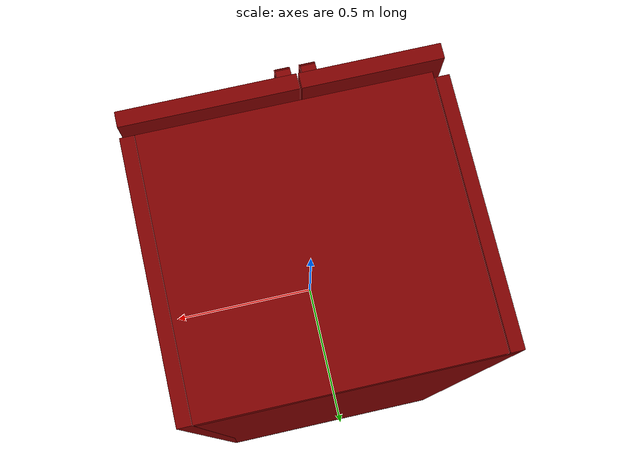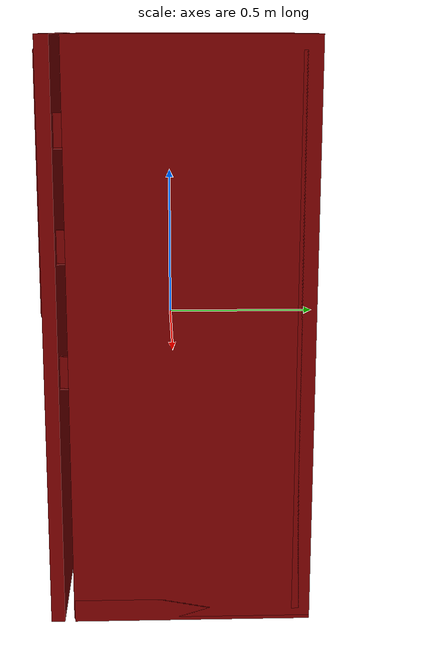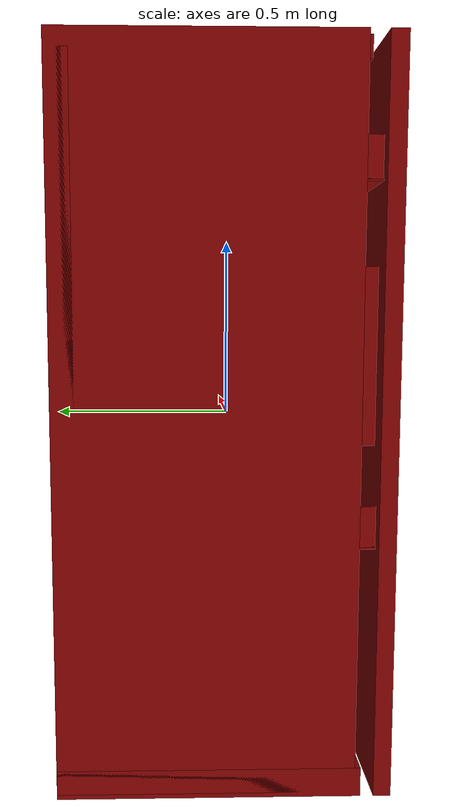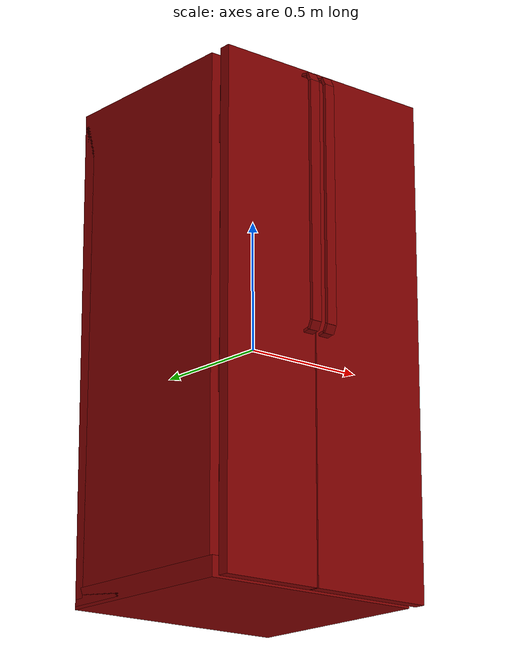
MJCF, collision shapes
<mujoco model="model">
  <compiler angle="radian"/>
  <asset>
    <mesh file="visuals/Body001.obj" name="Body001_vis"/>
    <mesh file="visuals/Body001_Clear.obj" name="Body001_Clear_vis"/>
    <mesh file="visuals/Door001.obj" name="Door001_vis"/>
    <mesh file="visuals/Door001_Clear.obj" name="Door001_Clear_vis"/>
    <mesh file="visuals/Door002.obj" name="Door002_vis"/>
    <mesh file="visuals/Door002_Clear.obj" name="Door002_Clear_vis"/>
    <mesh file="visuals/Drawer001.obj" name="Drawer001_vis"/>
    <mesh file="visuals/Drawer002.obj" name="Drawer002_vis"/>
    <mesh file="visuals/Drawer003.obj" name="Drawer003_vis"/>
    <mesh file="visuals/Handle001.obj" name="Handle001_vis"/>
    <mesh file="visuals/Handle002.obj" name="Handle002_vis"/>
    <texture file="visuals/T_BC001.png" name="Body001_material" type="2d"/>
    <material name="Body001_material" rgba="1 1 1 1.0" texture="Body001_material" shininess="0.5472135841846466" specular="0.3103448502657381"/>
    <material name="Body001_Clear_material" rgba="0.8875665664672852 0.8875665664672852 0.8875665664672852 0.14603173732757568" shininess="0.4472135901451111" specular="0.3103448502657381"/>
    <texture file="visuals/T_BC001.png" name="Door001_material" type="2d"/>
    <material name="Door001_material" rgba="1 1 1 1.0" texture="Door001_material" shininess="0.5472135841846466" specular="0.3103448502657381"/>
    <material name="Door001_Clear_material" rgba="0.8875665664672852 0.8875665664672852 0.8875665664672852 0.14603173732757568" shininess="0.4472135901451111" specular="0.3103448502657381"/>
    <texture file="visuals/T_BC001.png" name="Handle001_material" type="2d"/>
    <material name="Handle001_material" rgba="1 1 1 1.0" texture="Handle001_material" shininess="0.5472135841846466" specular="0.3103448502657381"/>
    <texture file="visuals/T_BC001.png" name="Door002_material" type="2d"/>
    <material name="Door002_material" rgba="1 1 1 1.0" texture="Door002_material" shininess="0.5472135841846466" specular="0.3103448502657381"/>
    <material name="Door002_Clear_material" rgba="0.8875665664672852 0.8875665664672852 0.8875665664672852 0.14603173732757568" shininess="0.4472135901451111" specular="0.3103448502657381"/>
    <texture file="visuals/T_BC001.png" name="Handle002_material" type="2d"/>
    <material name="Handle002_material" rgba="1 1 1 1.0" texture="Handle002_material" shininess="0.5472135841846466" specular="0.3103448502657381"/>
    <texture file="visuals/T_BC001.png" name="Drawer001_material" type="2d"/>
    <material name="Drawer001_material" rgba="1 1 1 1.0" texture="Drawer001_material" shininess="0.5472135841846466" specular="0.3103448502657381"/>
    <texture file="visuals/T_BC001.png" name="Drawer002_material" type="2d"/>
    <material name="Drawer002_material" rgba="1 1 1 1.0" texture="Drawer002_material" shininess="0.5472135841846466" specular="0.3103448502657381"/>
    <texture file="visuals/T_BC001.png" name="Drawer003_material" type="2d"/>
    <material name="Drawer003_material" rgba="1 1 1 1.0" texture="Drawer003_material" shininess="0.5472135841846466" specular="0.3103448502657381"/>
  </asset>
  <default>
    <default class="visual">
      <geom conaffinity="0" contype="0" group="1" type="mesh"/>
    </default>
    <default class="collision">
      <geom group="0" rgba="0.5 0 0 0.5"/>
    </default>
    <default class="spawn">
      <geom group="0" rgba="1 1 1 0.5" contype="0" conaffinity="0"/>
      <site group="0" rgba="1 1 1 0.5"/>
    </default>
    <default class="region">
      <geom group="1" conaffinity="0" contype="0" rgba="0 1 0 0"/>
    </default>
  </default>
  <worldbody>
    <body>
      <body name="object">
        <geom mesh="Body001_vis" type="mesh" solimp="0.998 0.998 0.001" solref="0.001 1" density="100" friction="0.95 0.3 0.1" class="visual" material="Body001_material"/>
        <geom class="collision" type="box" pos="-0.4336509108543396 0.07142437249422073 0.005860745906829834" size="0.01959938555955887 0.3851611018180847 0.951562225818634" quat="1.0 0.0 0.0 0.0"/>
        <geom class="collision" type="box" pos="0.0008711601258255541 0.06280471384525299 0.9293645024299622" size="0.4111725389957428 0.39378076791763306 0.028058471158146858" quat="1.0 0.0 0.0 0.0"/>
        <geom class="collision" type="box" pos="0.4333297610282898 0.06280471384525299 0.005860745906829834" size="0.01992054469883442 0.39378076791763306 0.951562225818634" quat="1.0 0.0 0.0 0.0"/>
        <geom class="collision" type="box" pos="0.0 0.06406276673078537 -0.9194051623344421" size="0.4532502591609955 0.3925227224826813 0.038017868995666504" quat="1.0 0.0 0.0 0.0"/>
        <geom class="collision" type="box" pos="0.0 0.4266170263290405 -0.004701931495219469" size="0.4532502591609955 0.029968474060297012 0.9156023263931274" quat="1.0 0.0 0.0 0.0"/>
        <geom class="collision" type="box" pos="-0.06068806350231171 0.04241957142949104 0.005115657113492489" size="0.023796552792191505 0.3735535442829132 0.903842031955719" quat="1.0 0.0 0.0 0.0"/>
        <body name="Body001_Clear">
          <geom mesh="Body001_Clear_vis" type="mesh" solimp="0.998 0.998 0.001" solref="0.001 1" density="100" friction="0.95 0.3 0.1" class="visual" material="Body001_Clear_material"/>
          <geom class="collision" type="box" pos="-0.0005941828712821007 0.06911363452672958 -0.21624889969825745" size="0.4159024655818939 0.3246045410633087 0.010394258424639702" quat="1.0 0.0 0.0 0.0"/>
          <geom class="collision" type="box" pos="-0.0005657924339175224 0.06904558837413788 -0.5462470054626465" size="0.41606733202934265 0.3245364725589752 0.010489673353731632" quat="1.0 0.0 0.0 0.0"/>
          <geom class="collision" type="box" pos="-0.00028277456294745207 0.10726486891508102 0.5461824536323547" size="0.4219730794429779 0.2994402348995209 0.00704615656286478" quat="1.0 0.0 0.0 0.0"/>
          <geom class="collision" type="box" pos="-0.00028277456294745207 0.10726486891508102 0.1892700493335724" size="0.4219730794429779 0.2994402348995209 0.007046188227832317" quat="1.0 0.0 0.0 0.0"/>
        </body>
        <body name="Door001">
          <joint axis="0.0 0.0 -1.0" pos="-0.4158991277217865 -0.3749711811542511 0.03443636745214462" limited="true" name="Door001_joint" range="0.0 1.5707963267948966" type="hinge" damping="1" frictionloss="1" armature=".01" stiffness="0.05"/>
          <geom mesh="Door001_vis" type="mesh" solimp="0.998 0.998 0.001" solref="0.001 1" density="100" friction="0.95 0.3 0.1" class="visual" material="Door001_material"/>
          <geom class="collision" type="box" pos="-0.2537972927093506 -0.3851555585861206 -2.8172507882118225e-08" size="0.1994502991437912 0.022545719519257545 0.9574116468429565" quat="1.0 0.0 0.0 0.0"/>
          <geom class="collision" type="box" pos="-0.2493261992931366 -0.3175674378871918 0.18050585687160492" size="0.13234353065490723 0.05310186371207237 0.22757089138031006" quat="1.0 0.0 0.0 0.0"/>
          <body name="Door001_Clear">
            <geom mesh="Door001_Clear_vis" type="mesh" solimp="0.998 0.998 0.001" solref="0.001 1" density="100" friction="0.95 0.3 0.1" class="visual" material="Door001_Clear_material"/>
            <geom class="collision" type="box" pos="-0.4107002913951874 -0.3392782509326935 0.6696896553039551" size="0.023360518738627434 0.005456980783492327 0.05299126356840134" quat="0.6175482273101807 0.0 0.0 0.786532998085022"/>
            <geom class="collision" type="box" pos="-0.09666810184717178 -0.34024566411972046 0.6696896553039551" size="0.02236468531191349 0.005456981249153614 0.05299126356840134" quat="0.6175482273101807 0.0 -0.0 -0.7865330576896667"/>
            <geom class="collision" type="box" pos="-0.2554700970649719 -0.3181689381599426 0.6615341901779175" size="0.15932269394397736 0.0020894466433674097 0.04483528062701225" quat="1.0 0.0 0.0 0.0"/>
            <geom class="collision" type="box" pos="-0.25664809346199036 -0.34008705615997314 0.6140055656433105" size="0.15955737233161926 0.024496395140886307 0.002438019961118698" quat="1.0 0.0 0.0 0.0"/>
            <geom class="collision" type="box" pos="-0.25664809346199036 -0.34008705615997314 -0.30767011642456055" size="0.15955732762813568 0.024496495723724365 0.0024380262475460768" quat="1.0 0.0 0.0 0.0"/>
            <geom class="collision" type="box" pos="-0.2554700970649719 -0.3181689381599426 -0.26014143228530884" size="0.1593225598335266 0.0020894655026495457 0.04483558237552643" quat="1.0 0.0 0.0 0.0"/>
            <geom class="collision" type="box" pos="-0.09666810184717178 -0.34024566411972046 -0.251986026763916" size="0.02236468531191349 0.005456981249153614 0.05299126356840134" quat="0.6175482273101807 0.0 -0.0 -0.7865330576896667"/>
            <geom class="collision" type="box" pos="-0.4107002913951874 -0.3392782509326935 -0.251986026763916" size="0.023360518738627434 0.005456980783492327 0.05299126356840134" quat="0.6175482273101807 0.0 0.0 0.786532998085022"/>
          </body>
          <body name="Handle001">
            <geom mesh="Handle001_vis" type="mesh" solimp="0.998 0.998 0.001" solref="0.001 1" density="100" friction="0.95 0.3 0.1" class="visual" material="Handle001_material"/>
            <geom class="collision" type="box" pos="-0.08697254955768585 -0.44984424114227295 0.4443800151348114" size="0.020951904356479645 0.006678530015051365 0.45929333567619324" quat="1.0 0.0 0.0 0.0"/>
            <geom class="collision" type="box" pos="-0.08697254955768585 -0.44216039776802063 0.9176315069198608" size="0.0209524966776371 0.006460898090153933 0.01777993142604828" quat="0.9747755527496338 -0.2231874018907547 4.9557561785799263e-17 3.0003551446394067e-24"/>
            <geom class="collision" type="box" pos="-0.08697254955768585 -0.4228537976741791 0.9320653676986694" size="0.0209524966776371 0.005356388632208109 0.015140105970203876" quat="0.7742652297019958 -0.6328612565994263 1.4052342769397847e-16 2.407843548885205e-22"/>
            <geom class="collision" type="box" pos="-0.08697254955768585 -0.4228537976741791 -0.04199744388461113" size="0.0209524966776371 0.005356388632208109 0.015140105970203876" quat="3.0792154603886956e-08 -8.162389519839053e-08 -0.6328612565994263 0.7742652297019958"/>
            <geom class="collision" type="box" pos="-0.08697254955768585 -0.44216039776802063 -0.027563629671931267" size="0.0209524966776371 0.006460897624492645 0.01777992956340313" quat="7.35935046236591e-08 -1.685018169439445e-08 -0.2231873869895935 0.9747755527496338"/>
          </body>
        </body>
        <body name="Door002">
          <joint axis="0.0 0.0 1.0" pos="0.4179718792438507 -0.3749711811542511 0.03443636745214462" limited="true" name="Door002_joint" range="0.0 1.5707963267948966" type="hinge" damping="1" frictionloss="1" armature=".01" stiffness="0.05"/>
          <geom mesh="Door002_vis" type="mesh" solimp="0.998 0.998 0.001" solref="0.001 1" density="100" friction="0.95 0.3 0.1" class="visual" material="Door002_material"/>
          <geom class="collision" type="box" pos="0.20216213166713715 -0.38515546917915344 1.6065314412117004e-08" size="0.25108596682548523 0.022545812651515007 0.9574138522148132" quat="1.0 0.0 0.0 0.0"/>
          <body name="Door002_Clear">
            <geom mesh="Door002_Clear_vis" type="mesh" solimp="0.998 0.998 0.001" solref="0.001 1" density="100" friction="0.95 0.3 0.1" class="visual" material="Door002_Clear_material"/>
            <geom class="collision" type="box" pos="0.20179873704910278 -0.3233039677143097 -0.16130205988883972" size="0.18490783870220184 0.04127877950668335 0.002437976188957691" quat="1.0 0.0 0.0 0.0"/>
            <geom class="collision" type="box" pos="0.20287545025348663 -0.2867683470249176 -0.11377348005771637" size="0.1846933215856552 0.00208941544406116 0.04483478143811226" quat="1.0 0.0 0.0 0.0"/>
            <geom class="collision" type="box" pos="0.3897009491920471 -0.328563928604126 -0.10561805963516235" size="0.03406573086977005 0.004994058515876532 0.05299126356840134" quat="0.6175482273101807 0.0 -0.0 -0.7865330576896667"/>
            <geom class="collision" type="box" pos="0.012098237872123718 -0.328563928604126 -0.10561805963516235" size="0.03406573086977005 0.004994058515876532 0.05299126356840134" quat="0.6175482273101807 0.0 0.0 0.786532998085022"/>
            <geom class="collision" type="box" pos="0.012098237872123718 -0.328563928604126 0.30663272738456726" size="0.03406573086977005 0.004994058515876532 0.05299126356840134" quat="0.6175482273101807 0.0 0.0 0.786532998085022"/>
            <geom class="collision" type="box" pos="0.3897009491920471 -0.328563928604126 0.30663272738456726" size="0.03406573086977005 0.004994058515876532 0.05299126356840134" quat="0.6175482273101807 0.0 -0.0 -0.7865330576896667"/>
            <geom class="collision" type="box" pos="0.20287545025348663 -0.2867683470249176 0.29847729206085205" size="0.1846933215856552 0.0020894217304885387 0.04483488202095032" quat="1.0 0.0 0.0 0.0"/>
            <geom class="collision" type="box" pos="0.20179873704910278 -0.3233039677143097 0.2509487271308899" size="0.18490783870220184 0.041279081255197525 0.002437995048239827" quat="1.0 0.0 0.0 0.0"/>
            <geom class="collision" type="box" pos="0.20287545025348663 -0.2867683470249176 0.6615341901779175" size="0.1846933215856552 0.002089440356940031 0.044835180044174194" quat="1.0 0.0 0.0 0.0"/>
            <geom class="collision" type="box" pos="0.3897009491920471 -0.328563928604126 0.6696895956993103" size="0.03406573086977005 0.004994058515876532 0.05299126356840134" quat="0.6175482273101807 0.0 -0.0 -0.7865330576896667"/>
            <geom class="collision" type="box" pos="0.012098237872123718 -0.328563928604126 0.6696895956993103" size="0.03406573086977005 0.004994058515876532 0.05299126356840134" quat="0.6175482273101807 0.0 0.0 0.786532998085022"/>
            <geom class="collision" type="box" pos="0.20179873704910278 -0.3233039677143097 0.6142440438270569" size="0.18490783870220184 0.04127950593829155 0.0024380215909332037" quat="1.0 0.0 0.0 0.0"/>
          </body>
          <body name="Handle002">
            <geom mesh="Handle002_vis" type="mesh" solimp="0.998 0.998 0.001" solref="0.001 1" density="100" friction="0.95 0.3 0.1" class="visual" material="Handle002_material"/>
            <geom class="collision" type="box" pos="-0.016205351799726486 -0.44216039776802063 -0.027563629671931267" size="0.0209524966776371 0.006460897624492645 0.01777992956340313" quat="7.35935046236591e-08 -1.685018169439445e-08 -0.2231873869895935 0.9747755527496338"/>
            <geom class="collision" type="box" pos="-0.016205351799726486 -0.4228537976741791 -0.04199744388461113" size="0.0209524966776371 0.005356388632208109 0.015140105970203876" quat="3.0792154603886956e-08 -8.162389519839053e-08 -0.6328612565994263 0.7742652297019958"/>
            <geom class="collision" type="box" pos="-0.016205351799726486 -0.4228537976741791 0.9320653676986694" size="0.0209524966776371 0.005356388632208109 0.015140105970203876" quat="0.7742652297019958 -0.6328612565994263 1.4052342769397847e-16 2.407843548885205e-22"/>
            <geom class="collision" type="box" pos="-0.016205351799726486 -0.44216039776802063 0.9176315069198608" size="0.0209524966776371 0.006460898090153933 0.01777993142604828" quat="0.9747755527496338 -0.2231874018907547 4.9557561785799263e-17 3.0003551446394067e-24"/>
            <geom class="collision" type="box" pos="-0.016205351799726486 -0.44984424114227295 0.4443800151348114" size="0.02095199003815651 0.006678557954728603 0.45929616689682007" quat="1.0 0.0 0.0 0.0"/>
          </body>
        </body>
        <body name="Drawer001">
          <joint axis="0.0 -1.0 0.0" pos="-0.23818200826644897 0.05941178649663925 -0.7227071523666382" limited="true" name="Drawer001_joint" range="0.0 0.5" type="slide" damping="1" frictionloss="1" armature=".01" stiffness="0.05"/>
          <geom mesh="Drawer001_vis" type="mesh" solimp="0.998 0.998 0.001" solref="0.001 1" density="100" friction="0.95 0.3 0.1" class="visual" material="Drawer001_material"/>
          <geom class="collision" type="box" pos="-0.23764574527740479 0.3692939877510071 -0.7208192944526672" size="0.1415279358625412 0.01812140829861164 0.140742227435112" quat="1.0 0.0 0.0 0.0"/>
          <geom class="collision" type="box" pos="-0.37139463424682617 0.04127020016312599 -0.7208192944526672" size="0.003381896298378706 0.3098912835121155 0.14074242115020752" quat="1.0 0.0 0.0 0.0"/>
          <geom class="collision" type="box" pos="-0.09667587280273438 0.04127020016312599 -0.7208192944526672" size="0.005123882554471493 0.3098916709423065 0.14074261486530304" quat="1.0 0.0 0.0 0.0"/>
          <geom class="collision" type="box" pos="-0.2331688404083252 -0.24173253774642944 -0.7208192944526672" size="0.14153273403644562 0.018283244222402573 0.14053912460803986" quat="0.9973334074020386 0.0729803591966629 1.620489502510989e-17 -2.3091398366971044e-24"/>
          <geom class="collision" type="box" pos="-0.2331688404083252 0.07289069890975952 -0.8481782674789429" size="0.1415284425020218 0.31191226840019226 0.016398988664150238" quat="1.0 0.0 0.0 0.0"/>
        </body>
        <body name="Drawer002">
          <joint axis="0.0 -1.0 0.0" pos="0.18617573380470276 0.059411678463220596 -0.3822690546512604" limited="true" name="Drawer002_joint" range="0.0 0.5" type="slide" damping="1" frictionloss="1" armature=".01" stiffness="0.05"/>
          <geom mesh="Drawer002_vis" type="mesh" solimp="0.998 0.998 0.001" solref="0.001 1" density="100" friction="0.95 0.3 0.1" class="visual" material="Drawer002_material"/>
          <geom class="collision" type="box" pos="0.18611545860767365 0.07289069890975952 -0.5103121995925903" size="0.19797039031982422 0.3119048774242401 0.013743812218308449" quat="1.0 0.0 0.0 0.0"/>
          <geom class="collision" type="box" pos="-0.0072292909026145935 0.04127020016312599 -0.37871599197387695" size="0.004730665124952793 0.3098853528499603 0.14411240816116333" quat="1.0 0.0 0.0 0.0"/>
          <geom class="collision" type="box" pos="0.18611545860767365 0.3692939877510071 -0.37871599197387695" size="0.19797039031982422 0.018121100962162018 0.1441127210855484" quat="1.0 0.0 0.0 0.0"/>
          <geom class="collision" type="box" pos="0.18611545860767365 -0.24524885416030884 -0.37795543670654297" size="0.19797039031982422 0.018134204670786858 0.14213941991329193" quat="0.9973334074020386 0.0729803591966629 1.620489502510989e-17 -2.3091398366971044e-24"/>
          <geom class="collision" type="box" pos="0.3802013695240021 0.04127020016312599 -0.37871599197387695" size="0.0040023066103458405 0.3098866641521454 0.14411303400993347" quat="1.0 0.0 0.0 0.0"/>
        </body>
        <body name="Drawer003">
          <joint axis="0.0 -1.0 0.0" pos="0.18617576360702515 0.054700817912817 -0.7112010717391968" limited="true" name="Drawer003_joint" range="0.0 0.5" type="slide" damping="1" frictionloss="1" armature=".01" stiffness="0.05"/>
          <geom mesh="Drawer003_vis" type="mesh" solimp="0.998 0.998 0.001" solref="0.001 1" density="100" friction="0.95 0.3 0.1" class="visual" material="Drawer003_material"/>
          <geom class="collision" type="box" pos="0.18611545860767365 0.07289069890975952 -0.8444443345069885" size="0.19797039031982422 0.3119075298309326 0.015889745205640793" quat="1.0 0.0 0.0 0.0"/>
          <geom class="collision" type="box" pos="0.18611545860767365 -0.25230926275253296 -0.7178944945335388" size="0.19797039031982422 0.014277408830821514 0.14558136463165283" quat="0.9973334074020386 0.0729803591966629 1.620489502510989e-17 -2.3091398366971044e-24"/>
          <geom class="collision" type="box" pos="0.3802013695240021 0.04127020016312599 -0.7154293656349182" size="0.0040023066103458405 0.30988800525665283 0.14490170776844025" quat="1.0 0.0 0.0 0.0"/>
          <geom class="collision" type="box" pos="-0.0072292909026145935 0.04127020016312599 -0.7154293656349182" size="0.004730665124952793 0.30988866090774536 0.14490185678005219" quat="1.0 0.0 0.0 0.0"/>
          <geom class="collision" type="box" pos="0.18611545860767365 0.3692939877510071 -0.7154293656349182" size="0.19797039031982422 0.018121307715773582 0.14490202069282532" quat="1.0 0.0 0.0 0.0"/>
        </body>
        <geom class="region" name="reg_main" type="box" pos="0.0 0.02444198727607727 0.0" size="0.45325028896331787 0.4321434795856476 0.9574230313301086"/>
      </body>
    </body>
  </worldbody>
  <actuator>
    <motor name="Door001_joint_actuator" joint="Door001_joint" gear="50"/>
    <motor name="Door002_joint_actuator" joint="Door002_joint" gear="50"/>
    <motor name="Drawer001_joint_actuator" joint="Drawer001_joint" gear="50"/>
    <motor name="Drawer002_joint_actuator" joint="Drawer002_joint" gear="50"/>
    <motor name="Drawer003_joint_actuator" joint="Drawer003_joint" gear="50"/>
  </actuator>
</mujoco>
